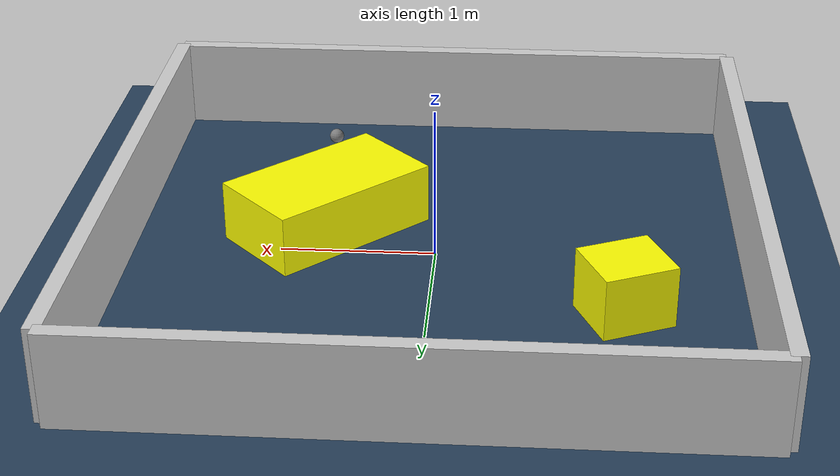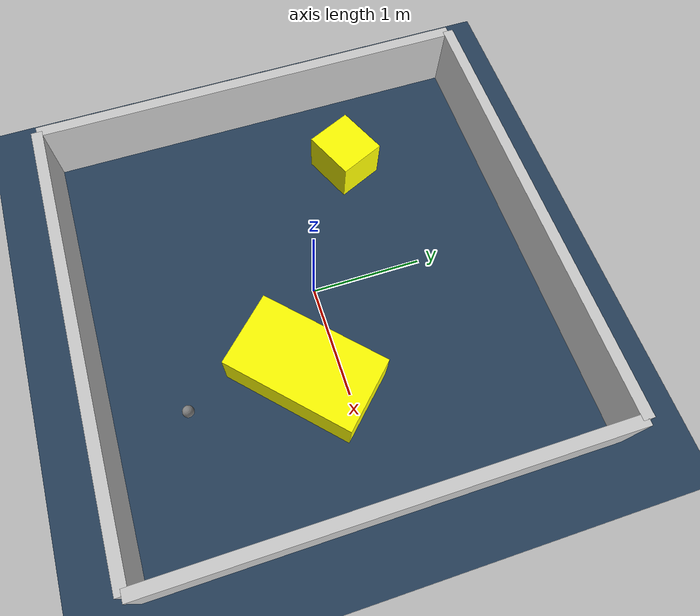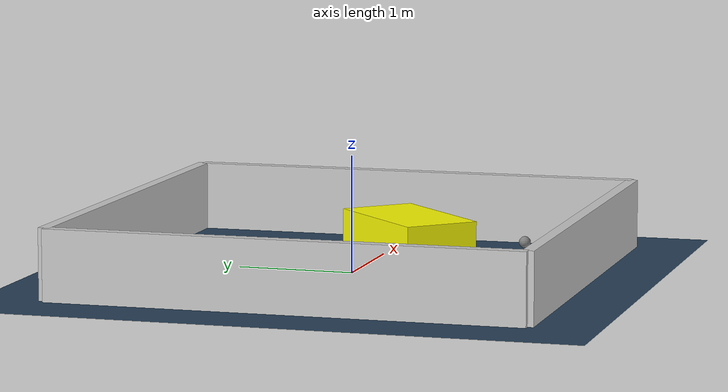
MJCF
<?xml version="1.0" ?>
<mujoco model="generated_environment">
  <option timestep="0.01" integrator="RK4" cone="elliptic"/>
  <default>
    <geom density="1"/>
  </default>
  <asset>
    <texture builtin="gradient" height="3072" rgb1="0.3 0.5 0.7" rgb2="0 0 0" type="skybox" width="512"/>
    <texture builtin="checker" height="300" mark="edge" markrgb="0.8 0.8 0.8" name="groundplane" rgb1="0.2 0.3 0.4" rgb2="0.1 0.2 0.3" type="2d" width="300"/>
    <material name="groundplane" reflectance="0.2" texrepeat="5 5" texture="groundplane" texuniform="true"/>
    <material name="robot" rgba="0.0 1.0 0.0 1"/>
  </asset>
  <worldbody>
    <light dir="0 0 -1" directional="true" pos="0 0 1.5"/>
    <geom condim="4" friction="1.0 0.005 0.001" material="groundplane" name="floor" size="0 0 0.05" type="plane"/>
    <body name="walls">
      <geom name="wall_1" condim="4" pos="-2.0 0.0 0.3" rgba="0.800000011920929 0.800000011920929 0.800000011920929 1.0" size="0.05 2.0 0.3" type="box"/>
      <geom name="wall_2" condim="4" pos="2.0 0.0 0.3" rgba="0.800000011920929 0.800000011920929 0.800000011920929 1.0" size="0.05 2.0 0.3" type="box"/>
      <geom name="wall_3" condim="4" pos="0.0 -2.0 0.3" rgba="0.800000011920929 0.800000011920929 0.800000011920929 1.0" size="2.0 0.05 0.3" type="box"/>
      <geom name="wall_4" condim="4" pos="0.0 2.0 0.3" rgba="0.800000011920929 0.800000011920929 0.800000011920929 1.0" size="2.0 0.05 0.3" type="box"/>
    </body>
    <body name="robot">
      <joint name="joint_x" type="slide" pos="0 0 0" axis="1 0 0"/>
      <joint name="joint_y" type="slide" pos="0 0 0" axis="0 1 0"/>
      <geom name="robot" type="sphere" pos="0.78742700479917 -1.3160888088294822 0.2" size="0.05" mass="5." friction="1.0 0.005 0.0001" condim="4"/>
      <site name="sensor_ball"/>
    </body>
    <body name="obstacle_1_movable">
      <geom name="obstacle_1_movable" condim="4" pos="0.7294401237317505 -0.30113107487594637 0.2" euler="0 0 313.8135441131759" friction="1.0 0.005 0.001" rgba="1 1 0 1" size="0.33413692621951296 0.5886931173342147 0.2" type="box" mass="0.1"/>
      <joint type="free"/>
    </body>
    <body name="obstacle_2_movable">
      <geom name="obstacle_2_movable" condim="4" pos="-1.1853214298211165 0.6820256051441214 0.2" euler="0 0 23.711164254369486" friction="1.0 0.005 0.001" rgba="1 1 0 1" size="0.23852699892150075 0.21599074354700465 0.2" type="box" mass="0.1"/>
      <joint type="free"/>
    </body>
  </worldbody>
  <actuator>
    <motor name="actuator_x" joint="joint_x" gear="1" ctrlrange="-1 1"/>
    <motor name="actuator_y" joint="joint_y" gear="1" ctrlrange="-1 1"/>
  </actuator>
</mujoco>
